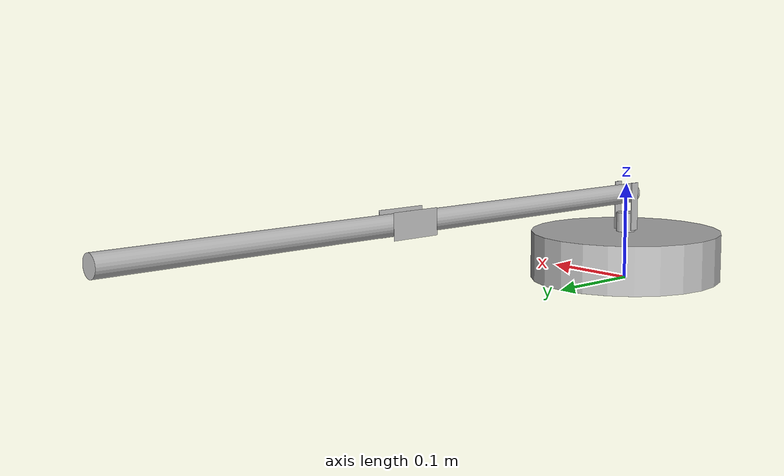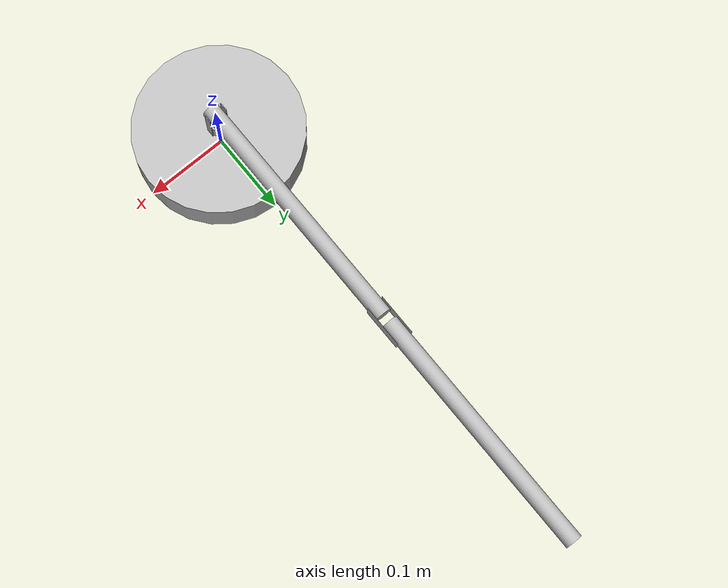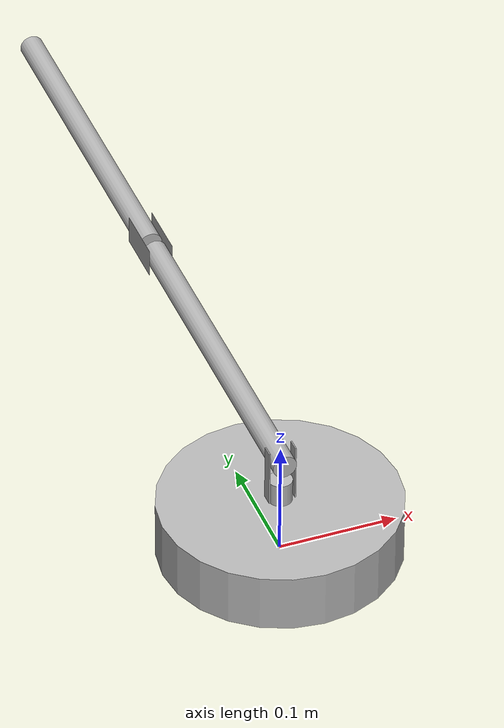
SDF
<?xml version='1.0'?>
<sdf version='1.4'>
<model name="try1">

<static>false</static>

<!-- for base-->

<link name='base' >
<pose>0 0 0.025 0 0 0</pose>

     <inertial>
        <pose>0 0 0.00099 0 0 0</pose>
        <inertia>
          <ixx>1.11</ixx>
          <ixy>0</ixy>
          <ixz>0</ixz>
          <iyy>100.11</iyy>
          <iyz>0</iyz>
          <izz>1.01</izz>
        </inertia>
        <mass>101.0</mass>
      </inertial>

<collision name='base_collision'>
<geometry >
<cylinder>
<radius>.1</radius>
<length>.05</length>
</cylinder>
</geometry>
</collision>

<visual name='base_visual'>
<geometry >
<cylinder>
<radius>.1</radius>
<length>.05</length>
</cylinder>
</geometry>
</visual>

</link>

<!-- for shoulder-->
<link name='shoulder'>
<pose>0 0 0.06 0 0 0</pose>

<collision name='shoulder_collision'>
<geometry>
<cylinder>
<radius>0.01</radius>
<length>.02</length>
</cylinder>
</geometry>
</collision>

<visual name='shoulder_visual'>
<geometry>
<cylinder>
<radius>0.01</radius>
<length>.02</length>
</cylinder>
</geometry>
</visual>

</link>

<!-- for elbow-->

<link name='elbow'>
	<pose>0 0.14 0.09 0 1.5707 1.5707</pose>

 	<collision name='elbow_collision'>
 		<geometry>
 			<cylinder>
 				<radius>0.01</radius>
 				<length>.3</length>
 			</cylinder>
 		</geometry>
 	</collision>

 	<visual name='elbow_visual'>
 		<geometry>
 			<cylinder>
 				<radius>0.01</radius>
 				<length>.3</length>
 			</cylinder>
 		</geometry>
 	</visual>

          	<collision name='elbow_ex_collision1'>
                <pose>0 0.01 0.16 0 0 0</pose>
 		<geometry>
 			<box>
 				<size>0.025 0.0001 0.05</size>
 			</box>
 		</geometry>
 	</collision>

        <visual name='elbow_ex_visual1'>
                <pose>0 0.01 0.16 0 0 0</pose>
 		<geometry>
 			<box>
 				<size>0.025 0.0001 0.05</size>
 			</box>
 		</geometry>
 	</visual>

	<collision name='elbow_ex_collision2'>
                <pose>0 -0.01 0.16 0 0 0</pose>
 		<geometry>
 			<box>
 				<size>0.025 0.0001 0.05</size>
 			</box>
 		</geometry>
 	</collision>

        <visual name='elbow_ex_visual2'>
                <pose>0 -0.01 0.16 0 0 0</pose>
 		<geometry>
 			<box>
 				<size>0.025 0.0001 0.05</size>
 			</box>
 		</geometry>
 	</visual>

 </link>

<!-- for wrist-->
<link name='wrist'>
<pose>0 0.45 0.09 0 1.5707 1.5707</pose>

<collision name='wrist_collision'>
<geometry>
<cylinder>
<radius>0.01</radius>
<length>.3</length>
</cylinder>
</geometry>
</collision>

<visual name='wrist_visual'>
<geometry>
<cylinder>
<radius>0.01</radius>
<length>.3</length>
</cylinder>
</geometry>
</visual>

</link>

<!-- for connectors-->
 <link name='connector1'>
 	<pose>0.011 0 0.077 0 0 0</pose>

<collision name='connector1_collision'>
 	<geometry>
 		<box>
 			<size>.001 0.01 0.05</size>
 		</box>
 	</geometry>
 </collision>

<visual name='connector1_visual'>
 	<geometry>
 		<box>
 			<size>.001 0.01 0.05</size>
 		</box>
 	</geometry>
 </visual>
</link>

 <link name='connector2'>
 	<pose>-0.011 0 0.077 0 0 0</pose>

<collision name='connector2_collision'>
 	<geometry>
 		<box>
 			<size>.001 0.01 0.05</size>
 		</box>
 	</geometry>
 </collision>

<visual name='connector2_visual'>
 	<geometry>
 		<box>
 			<size>.001 0.01 0.05</size>
 		</box>
 	</geometry>
 </visual>
</link>

<!-- for joints-->

 <!-- Used for fixing robot to Gazebo 'base_link' -->

<joint name='base_shoulder' type='revolute'>
	<parent>base</parent>
	<child>shoulder</child>
	<pose>0 0 0 0 0 0</pose>
	<axis> <xyz>0 0 1</xyz></axis>
</joint>

<joint name='shou_conn1' type='revolute'>
<parent>shoulder</parent>
	<child>connector1</child>
	<pose>0 0 0 0 0 0</pose>
	<axis> <xyz>0 0 1</xyz><limit><upper>0</upper><lower>0</lower></limit></axis>
</joint>

<joint name='shou_conn2' type='revolute'>
<parent>shoulder</parent>
	<child>connector2</child>
	<pose>0 0 0 0 0 0</pose>
	<axis> <xyz>0 0 1</xyz><limit><upper>0</upper><lower>0</lower></limit></axis>
</joint>

<joint name='elbow_conn1' type='revolute'>
	<parent>elbow</parent>
	<child>connector1</child>
	<pose>0 0 0 0 0 0</pose>
	<axis> <xyz>1 0 0</xyz><limit><upper>0.785</upper><lower>-0.785</lower></limit></axis>
</joint>

<joint name='elbow_conn2' type='revolute'>
	<parent>elbow</parent>
	<child>connector2</child>
	<pose>0 0 0 0 0 0</pose>
	<axis> <xyz>1 0 0</xyz><limit><upper>0.785</upper><lower>-0.785</lower></limit></axis>
</joint>

<joint name='elbow_wrist' type='revolute'>
	<parent>wrist</parent>
	<child>elbow</child>
	<pose>0 0 0.15 0 0 0</pose>
	<axis> <xyz>1 0 0</xyz><limit><upper>0.785</upper><lower>-0.785</lower></limit></axis>
</joint>

</model>
</sdf>
